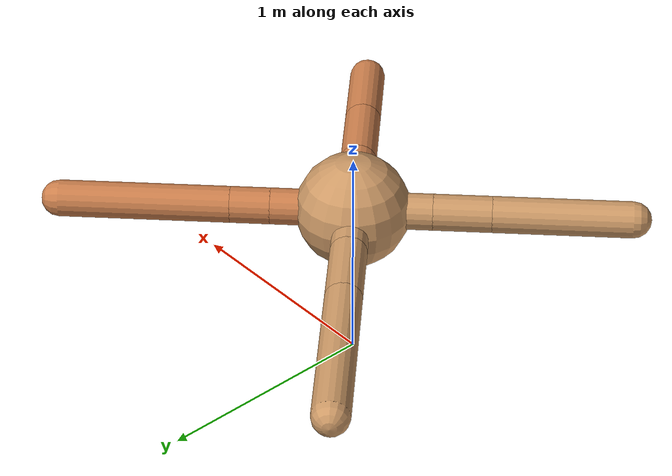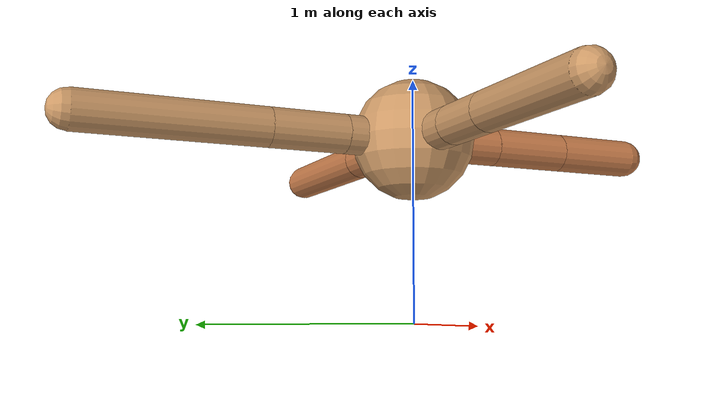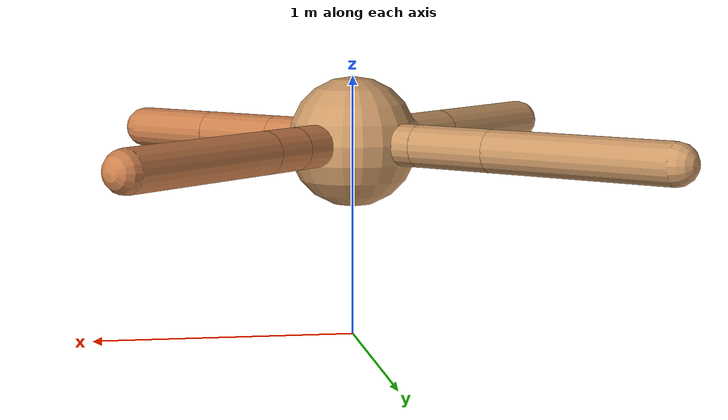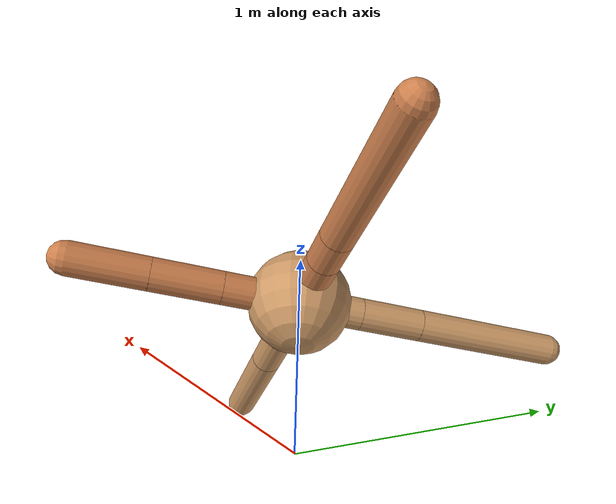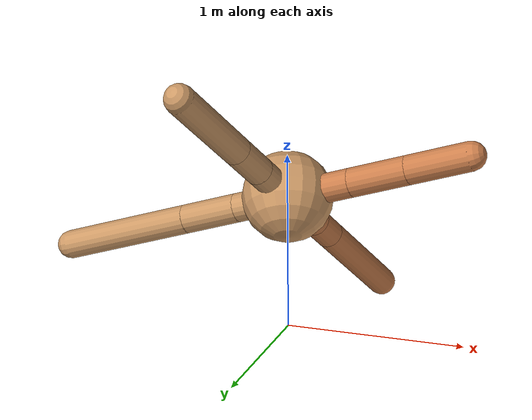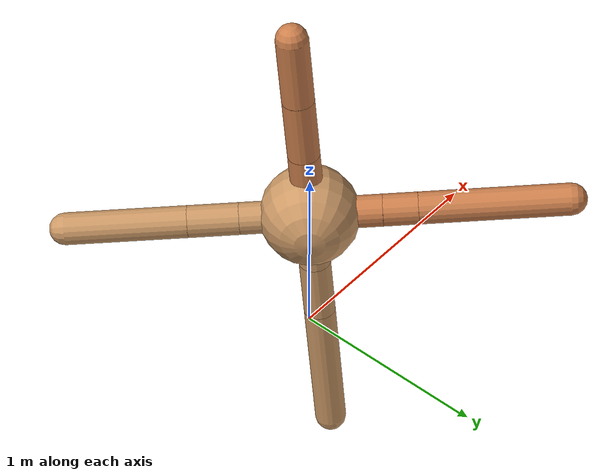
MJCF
<mujoco model="ant">
  <compiler angle="degree" coordinate="local" inertiafromgeom="true" />
  <option integrator="RK4" timestep="0.01" />
  <custom>
    <numeric data="0.0 0.0 0.55 1.0 0.0 0.0 0.0 0.0 1.0 0.0 -1.0 0.0 -1.0 0.0 1.0" name="init_qpos" />
  </custom>
  <default>
    <joint armature="1" damping="1" limited="true" />
    <geom conaffinity="0" condim="3" density="5.0" friction="1.5 0.1 0.1" margin="0.01" rgba="0.8 0.6 0.4 1" />
  </default>
  <worldbody>
    <body name="torso" pos="0 0 0.75">
      <geom name="torso_geom" pos="0 0 0" size="0.25" type="sphere" />

      <body name="front_left_leg" pos="0 0 0">
        <geom fromto="0.0 0.0 0.0 0.25246570290835496 0.25246570290835496 0.0" name="aux_1_geom" size="0.08" type="capsule" rgba=".8 .5 .3 1" />
        <body name="aux_1" pos="0.25246570290835496 0.25246570290835496 0.0">
          <joint axis="0 0 1" name="hip_1" pos="0.0 0.0 0.0" range="-40 40" type="hinge" />
          <geom fromto="0.0 0.0 0.0 0.12317131727219494 0.12317131727219494 0.0" name="left_leg_geom" size="0.08" type="capsule" rgba=".8 .5 .3 1" />
          <body pos="0.12317131727219494 0.12317131727219494 0.0" name="front_left_foot">
            <joint axis="-1 1 0" name="ankle_1" pos="0.0 0.0 0.0" range="30 100" type="hinge" />
            <geom fromto="0.0 0.0 0.0 0.5253540401744482 0.5253540401744482 0.0" name="left_ankle_geom" size="0.08" type="capsule" rgba=".8 .5 .3 1" />
          </body>
        </body>
      </body>
      <body name="front_right_leg" pos="0 0 0">
        <geom fromto="0.0 0.0 0.0 -0.21634421523273095 0.21634421523273095 0.0" name="aux_2_geom" size="0.08" type="capsule" />
        <body name="aux_2" pos="-0.21634421523273095 0.21634421523273095 0.0">
          <joint axis="0 0 1" name="hip_2" pos="0.0 0.0 0.0" range="-40 40" type="hinge" />
          <geom fromto="0.0 0.0 0.0 -0.2248597152798352 0.2248597152798352 0.0" name="right_leg_geom" size="0.08" type="capsule" />
          <body pos="-0.2248597152798352 0.2248597152798352 0.0" name="front_right_foot">
            <joint axis="1 1 0" name="ankle_2" pos="0.0 0.0 0.0" range="-100 -30" type="hinge" />
            <geom fromto="0.0 0.0 0.0 -0.5290392469223607 0.5290392469223607 0.0" name="right_ankle_geom" size="0.08" type="capsule" />
          </body>
        </body>
      </body>
      <body name="left_back_leg" pos="0 0 0">
        <geom fromto="0.0 0.0 0.0 -0.24291003653735144 -0.24291003653735144 0.0" name="aux_3_geom" size="0.08" type="capsule" />
        <body name="aux_3" pos="-0.24291003653735144 -0.24291003653735144 0.0">
          <joint axis="0 0 1" name="hip_3" pos="0.0 0.0 0.0" range="-40 40" type="hinge" />
          <geom fromto="0.0 0.0 0.0 -0.17990280460248034 -0.17990280460248034 0.0" name="back_leg_geom" size="0.08" type="capsule" />
          <body pos="-0.17990280460248034 -0.17990280460248034 0.0" name="left_back_foot">
            <joint axis="-1 1 0" name="ankle_3" pos="0.0 0.0 0.0" range="-100 -30" type="hinge" />
            <geom fromto="0.0 0.0 0.0 -0.4273687569941462 -0.4273687569941462 0.0" name="third_ankle_geom" size="0.08" type="capsule" />
          </body>
        </body>
      </body>
      <body name="right_back_leg" pos="0 0 0">
        <geom fromto="0.0 0.0 0.0 0.2660712412671271 -0.2660712412671271 0.0" name="aux_4_geom" size="0.08" type="capsule" rgba=".8 .5 .3 1" />
        <body name="aux_4" pos="0.2660712412671271 -0.2660712412671271 0.0">
          <joint axis="0 0 1" name="hip_4" pos="0.0 0.0 0.0" range="-40 40" type="hinge" />
          <geom fromto="0.0 0.0 0.0 0.23200224671584246 -0.23200224671584246 0.0" name="rightback_leg_geom" size="0.08" type="capsule" rgba=".8 .5 .3 1" />
          <body pos="0.23200224671584246 -0.23200224671584246 0.0" name="right_back_foot">
            <joint axis="1 1 0" name="ankle_4" pos="0.0 0.0 0.0" range="30 100" type="hinge" />
            <geom fromto="0.0 0.0 0.0 0.25164889362822496 -0.25164889362822496 0.0" name="fourth_ankle_geom" size="0.08" type="capsule" rgba=".8 .5 .3 1" />
          </body>
        </body>
      </body>
    </body>
  </worldbody>
  <actuator>
    <motor ctrllimited="true" ctrlrange="-1.0 1.0" joint="hip_4" gear="150" />
    <motor ctrllimited="true" ctrlrange="-1.0 1.0" joint="ankle_4" gear="150" />
    <motor ctrllimited="true" ctrlrange="-1.0 1.0" joint="hip_1" gear="150" />
    <motor ctrllimited="true" ctrlrange="-1.0 1.0" joint="ankle_1" gear="150" />
    <motor ctrllimited="true" ctrlrange="-1.0 1.0" joint="hip_2" gear="150" />
    <motor ctrllimited="true" ctrlrange="-1.0 1.0" joint="ankle_2" gear="150" />
    <motor ctrllimited="true" ctrlrange="-1.0 1.0" joint="hip_3" gear="150" />
    <motor ctrllimited="true" ctrlrange="-1.0 1.0" joint="ankle_3" gear="150" />
  </actuator>
</mujoco>
